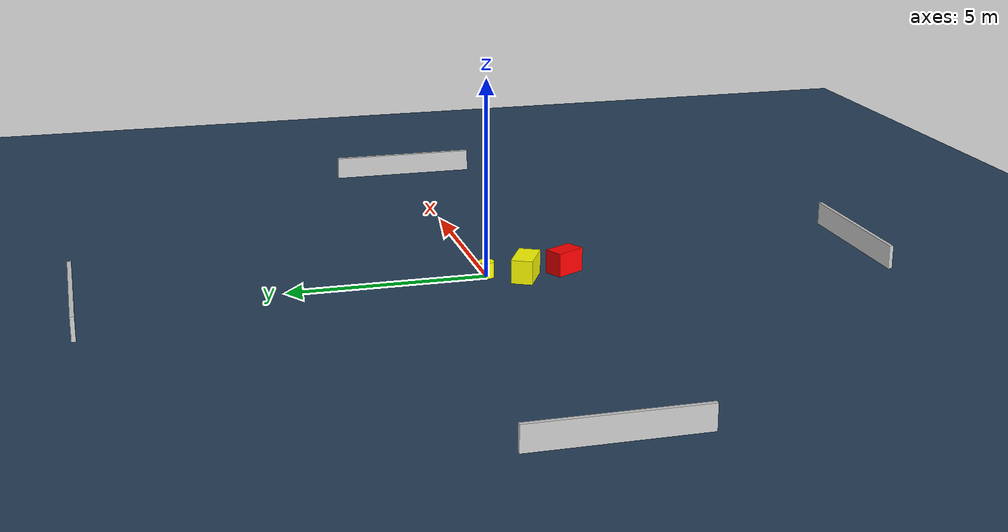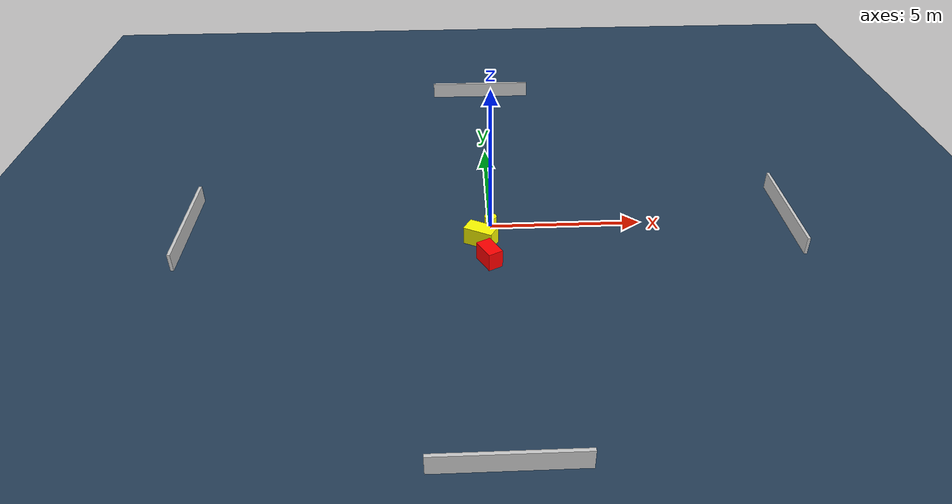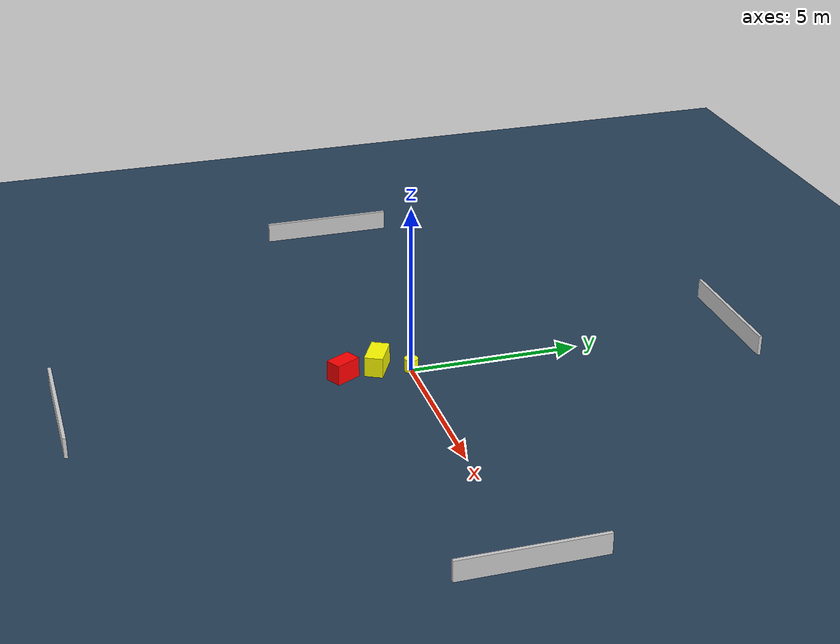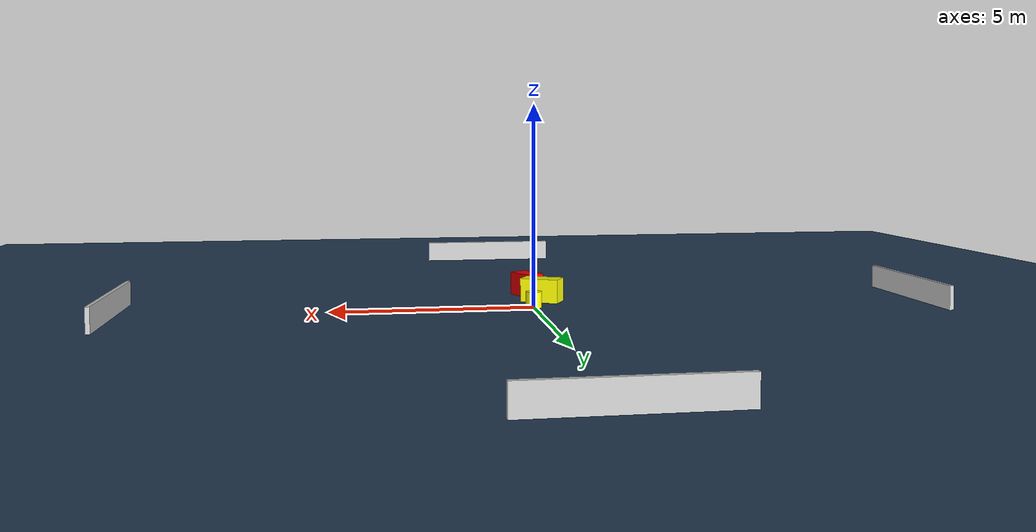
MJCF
<?xml version="1.0" ?>
<mujoco model="generated_environment">
  <option timestep="0.01" integrator="RK4" cone="elliptic"/>
  <default>
    <geom density="1"/>
  </default>
  <asset>
    <texture builtin="gradient" height="3072" name="skybox" rgb1="0.3 0.5 0.7" rgb2="0 0 0" type="skybox" width="512"/>
    <texture builtin="checker" height="300" name="groundplane" rgb1="0.2 0.3 0.4" rgb2="0.1 0.2 0.3" type="2d" width="300"/>
    <material name="groundplane" reflectance="0.2" texrepeat="5 5" texture="groundplane"/>
  </asset>
  <worldbody>
    <light dir="0 0 -1" directional="true" pos="0 0 1.5"/>
    <geom condim="3" friction="0.5 0.005 0.001" material="groundplane" name="floor" pos="0 0 0" size="0 0 0.05" type="plane"/>
    <body name="walls">
      <geom name="wall_1" condim="4" pos="-10.0 0.0 0.3" rgba="0.800000011920929 0.800000011920929 0.800000011920929 1.0" size="0.05 2.0 0.3" type="box"/>
      <geom name="wall_2" condim="4" pos="10.0 0.0 0.3" rgba="0.800000011920929 0.800000011920929 0.800000011920929 1.0" size="0.05 2.0 0.3" type="box"/>
      <geom name="wall_3" condim="4" pos="0.0 -10.0 0.3" rgba="0.800000011920929 0.800000011920929 0.800000011920929 1.0" size="2.0 0.05 0.3" type="box"/>
      <geom name="wall_4" condim="4" pos="0.0 10.0 0.3" rgba="0.800000011920929 0.800000011920929 0.800000011920929 1.0" size="2.0 0.05 0.3" type="box"/>
    </body>
    <body name="robot">
      <joint name="joint_x" type="slide" pos="0 0 0" axis="1 0 0"/>
      <joint name="joint_y" type="slide" pos="0 0 0" axis="0 1 0"/>
      <geom name="robot" type="cylinder" pos="0.0 0.0 0.2" size="0.2 0.2 0.0" mass="5.0" friction="1.0 0.005 0.0001" condim="4" rgba="1.0 1.0 0.0 1.0"/>
    </body>
    <body name="obstacle_1_movable">
      <geom name="obstacle_1_movable" condim="4" pos="-0.35443783445222166 -0.9161046852164175 0.3" euler="0 0 152.36826013061588" friction="0.0 0.005 0.001" rgba="1.0 1.0 0.0 1.0" size="0.49311508214285543 0.26866700800740106 0.3" type="box" mass="0.1"/>
      <joint type="free"/>
    </body>
    <body name="obstacle_2_static">
      <geom name="obstacle_2_static" condim="4" pos="-0.12317491774961754 -1.985029064487056 0.3" euler="0 0 28.295409229878818" friction="0.0 0.005 0.001" rgba="1.0 0.0 0.0 1.0" size="0.24474904165227884 0.3951525336240438 0.3" type="box"/>
    </body>
  </worldbody>
  <actuator>
    <motor name="actuator_x" joint="joint_x" gear="1" ctrlrange="-1 1"/>
    <motor name="actuator_y" joint="joint_y" gear="1" ctrlrange="-1 1"/>
  </actuator>
</mujoco>
